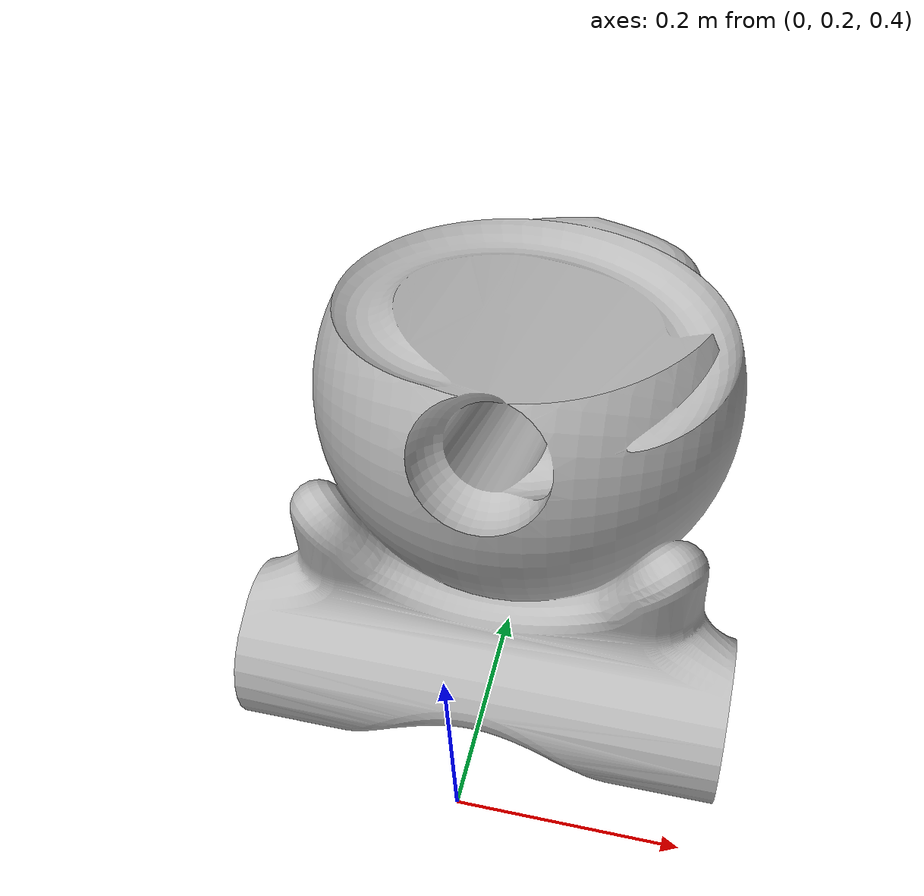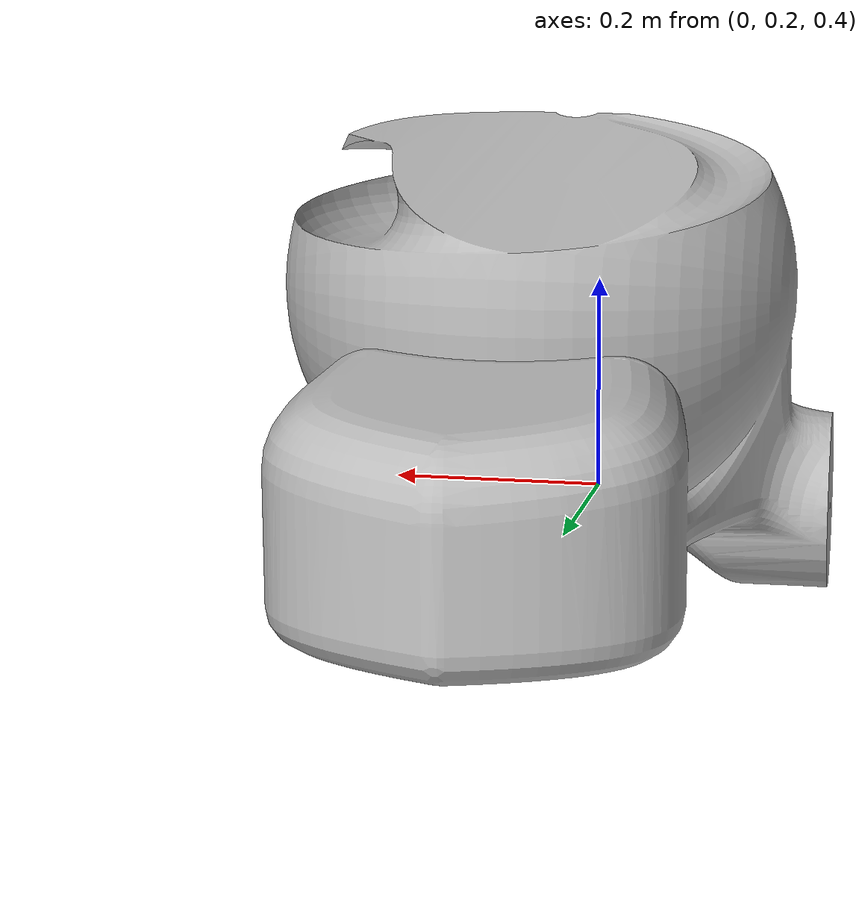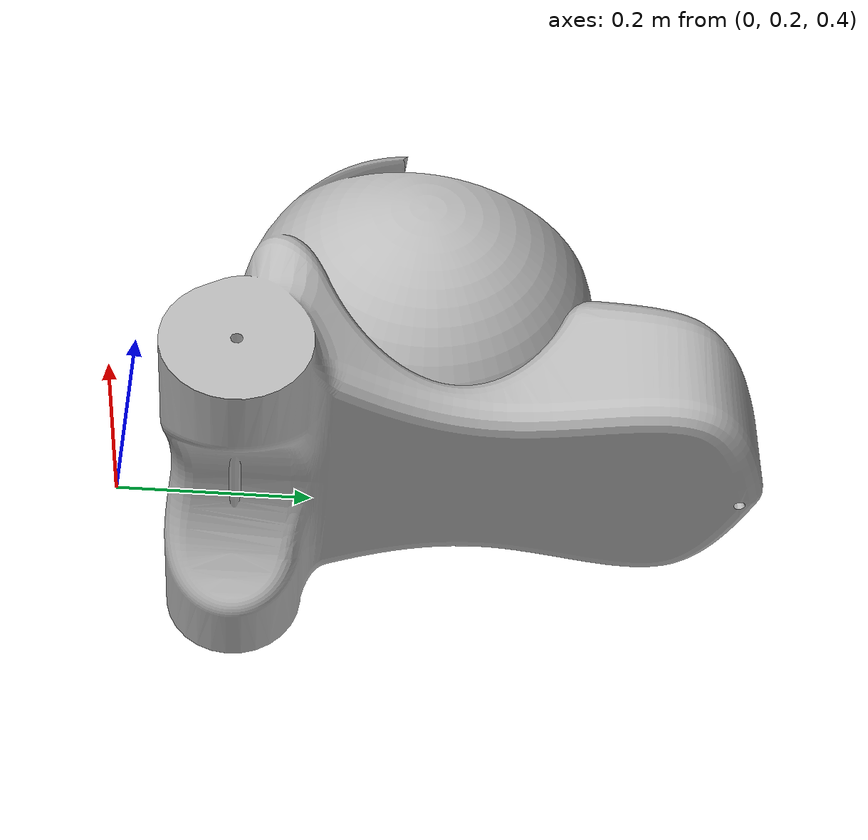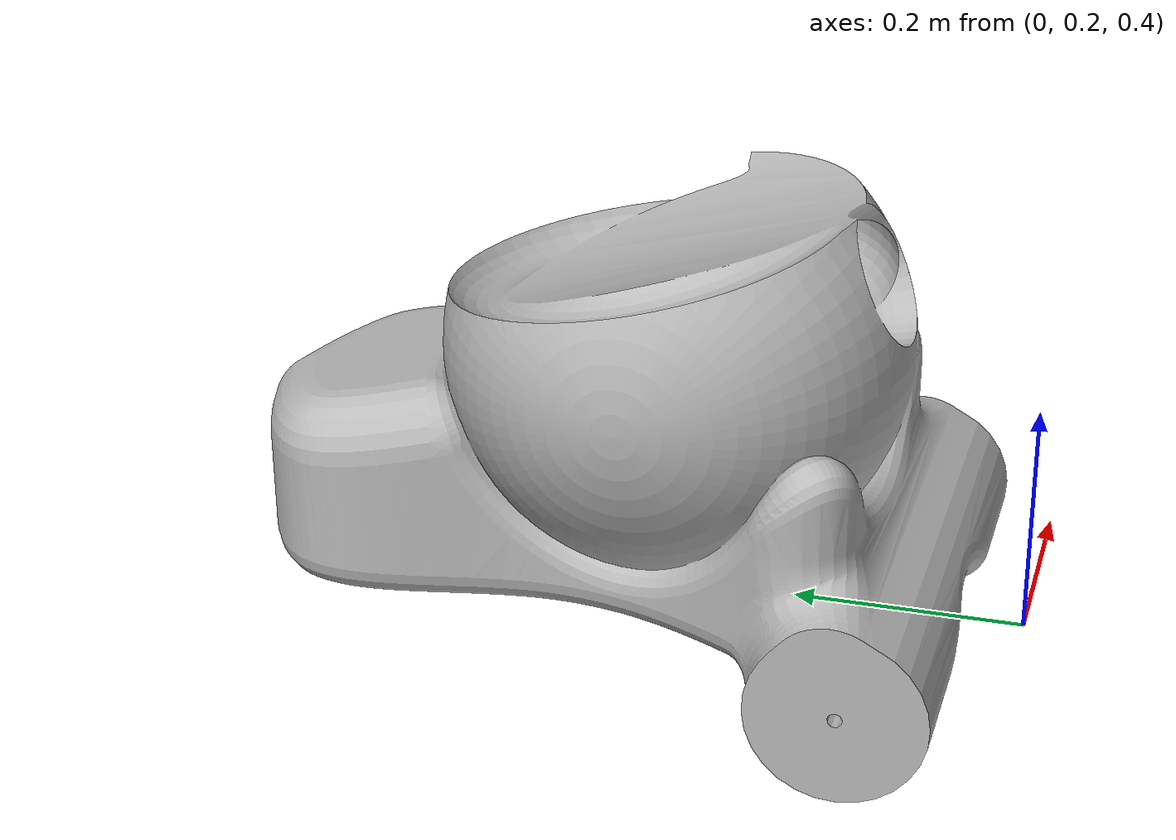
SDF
<?xml version="1.0" ?>
<sdf version="1.5">
  <model name="entertrainer_test">

    <link name="base">

      <inertial>
        <pose>0 0.5 0.5 0 0 0</pose>
        <inertia>
          <ixx>0.01</ixx>
          <ixy>0.00</ixy>
          <ixz>0.00</ixz>
          <iyy>0.01</iyy>
          <iyz>0.00</iyz>
          <izz>0.01</izz>
        </inertia>
        <mass>3.4</mass>
      </inertial>

      <collision name="base_collision">
        <pose>0 0.6 0.6 0 0 0</pose>
        <geometry>
          <box>
            <size>0.4 0.6 0.35</size>
          </box>
        </geometry>
      </collision>
      <visual name="base_visual">
        <pose>0 0.5 0.65 0 0 0</pose>
        <geometry>
          <mesh>
            <uri>model://dae/body.dae</uri>
            <scale>0.05 0.05 0.05 0.05</scale>
          </mesh>
        </geometry>
      </visual>

    </link>
  </model>
</sdf>
